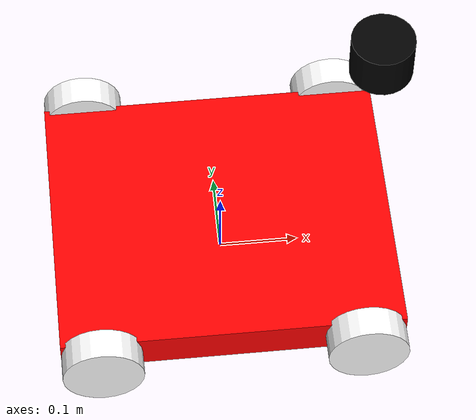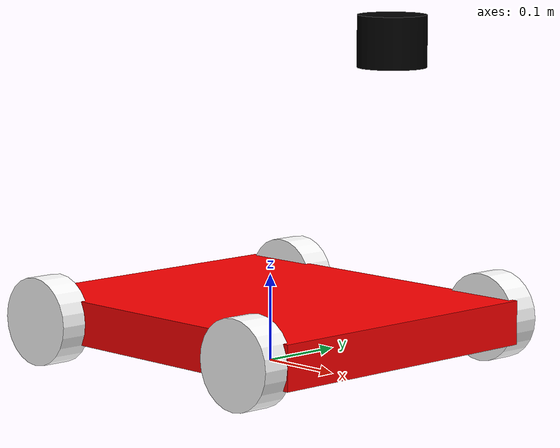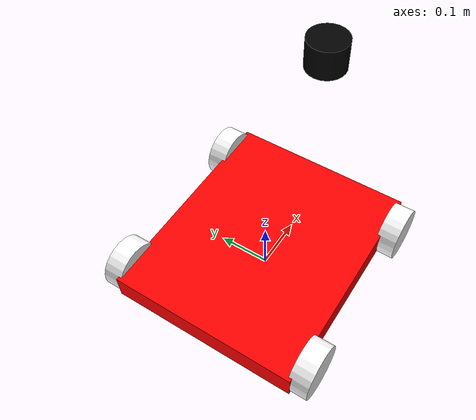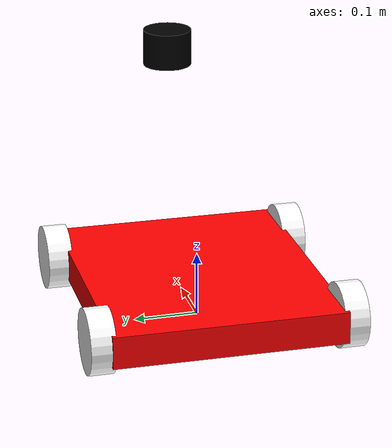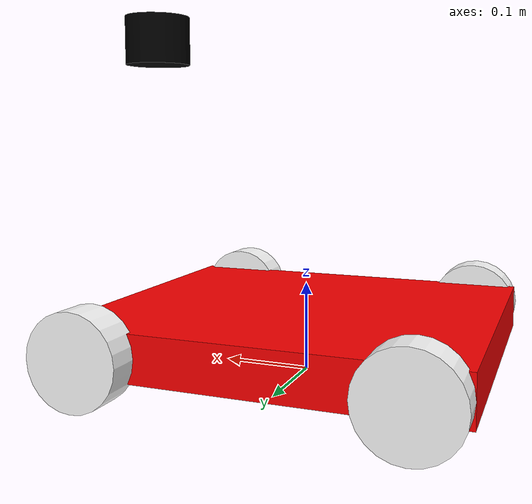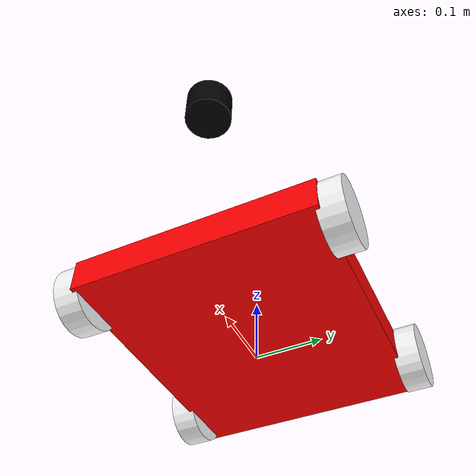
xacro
<?xml version="1.0"?>
<!-- Basic differential drive mobile base -->
<robot xmlns:xacro="http://www.ros.org/wiki/xacro" name="diffdrive_robot">
  <xacro:arg name="prefix" default="" />
  <xacro:arg name="use_mock_hardware" default="false" />

  <xacro:include filename="$(find ros2_control_demo_example_2)/urdf/robo_holly.xacro" />

  <!-- Import Rviz colors -->

  <!-- Import diffbot ros2_control description -->
  <xacro:include filename="$(find ros2_control_demo_example_2)/ros2_control/diffbot.ros2_control.xacro" />

  <xacro:diffbot_ros2_control
    name="DiffBot" prefix="$(arg prefix)" use_mock_hardware="$(arg use_mock_hardware)"/>

</robot>

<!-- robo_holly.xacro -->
<robot name="robo_holly" xmlns:xacro="http://ros.org/wiki/xacro">

  <!-- ****************** ROBOT CONSTANTS *******************************  -->
  <!-- Define the size of the robot's main chassis in meters -->
  <xacro:property name="base_width" value="0.36195"/>
  <xacro:property name="base_length" value="0.4318"/>
  <xacro:property name="base_height" value="0.0508"/>

  <!-- Define the shape of the robot's two back wheels in meters -->
  <xacro:property name="wheel_radius" value="0.0508"/>
  <xacro:property name="wheel_width" value="0.0381"/>

  <!-- x-axis points forward, y-axis points to left, z-axis points upwards -->
  <!-- Define the gap between the wheel and chassis along y-axis in meters -->
  <xacro:property name="wheel_ygap" value="0.0127"/>

  <!-- Position the wheels along the z-axis -->
  <xacro:property name="wheel_zoff" value="0.05"/>

  <!-- Position the wheels along the x-axis -->
  <xacro:property name="front_wheel_xoff" value="-0.1651"/>

  <!-- Position the caster wheel along the x-axis -->
  <xacro:property name="back_wheel_xoff" value="0.1651"/>

  <!-- Define intertial property macros  -->
  <xacro:macro name="box_inertia" params="m w h d">
    <inertial>
      <origin xyz="0 0 0" rpy="${pi/2} 0 ${pi/2}"/>
      <mass value="${m}"/>
      <inertia ixx="${(m/12) * (h*h + d*d)}" ixy="0.0" ixz="0.0" iyy="${(m/12) * (w*w + d*d)}" iyz="0.0" izz="${(m/12) * (w*w + h*h)}"/>
    </inertial>
  </xacro:macro>

  <xacro:macro name="cylinder_inertia" params="m r h">
    <inertial>
      <origin xyz="0 0 0" rpy="${pi/2} 0 0" />
      <mass value="${m}"/>
      <inertia ixx="${(m/12) * (3*r*r + h*h)}" ixy = "0" ixz = "0" iyy="${(m/12) * (3*r*r + h*h)}" iyz = "0" izz="${(m/2) * (r*r)}"/>
    </inertial>
  </xacro:macro>

  <xacro:macro name="sphere_inertia" params="m r">
    <inertial>
      <mass value="${m}"/>
      <inertia ixx="${(2/5) * m * (r*r)}" ixy="0.0" ixz="0.0" iyy="${(2/5) * m * (r*r)}" iyz="0.0" izz="${(2/5) * m * (r*r)}"/>
    </inertial>
  </xacro:macro>

  <!-- ********************** ROBOT BASE *********************************  -->
  <link name="base_link">
    <visual>
      <origin xyz="0 0 0.05" rpy="0 0 0"/>
      <geometry>
        <box size="${base_length} ${base_width} ${base_height}"/>
      </geometry>
      <material name="Red">
        <color rgba="${255/255} ${0/255} ${0/255} 1.0"/>
      </material>
    </visual>

    <collision>
      <geometry>
        <box size="${base_length} ${base_width} ${base_height}"/>
      </geometry>
    </collision>

    <xacro:box_inertia m="40.0" w="${base_width}" d="${base_length}" h="${base_height}"/>
  </link>

  <gazebo reference="base_link">
    <material>Gazebo/Red</material>
  </gazebo>

  <!-- *********************** DRIVE WHEELS ******************************  -->

  <xacro:macro name="front_wheel" params="prefix x_reflect y_reflect">
    <link name="${prefix}_link">
      <visual>
        <origin xyz="0 0 0" rpy="1.5707963267949 0 0"/>
        <geometry>
            <cylinder radius="${wheel_radius}" length="${wheel_width}"/>
        </geometry>
        <material name="White">
          <color rgba="${255/255} ${255/255} ${255/255} 1.0"/>
        </material>
      </visual>

      <collision>
        <origin xyz="0 0 0" rpy="${pi/2} 0 0"/>
        <geometry>
          <sphere radius="${wheel_radius}"/>
        </geometry>
      </collision>

      <xacro:cylinder_inertia m="110.5" r="${wheel_radius}" h="${wheel_width}"/>

    </link>

    <!-- Connect the wheels to the base_link at the appropriate location, and
         define a continuous joint to allow the wheels to freely rotate about
         an axis -->
    <joint name="${prefix}_joint" type="continuous">
      <parent link="base_link"/>
      <child link="${prefix}_link"/>
      <origin xyz="${x_reflect*front_wheel_xoff} ${y_reflect*(base_width/2+wheel_ygap)} ${wheel_zoff}" rpy="0 0 0"/>
      <axis xyz="0 1 0"/>
    </joint>
  </xacro:macro>

  <xacro:macro name="back_wheel" params="prefix x_reflect y_reflect">
    <link name="${prefix}_link">
      <visual>
        <origin xyz="0 0 0" rpy="1.5707963267949 0 0"/>
        <geometry>
            <cylinder radius="${wheel_radius}" length="${wheel_width}"/>
        </geometry>
        <material name="White">
          <color rgba="${255/255} ${255/255} ${255/255} 1.0"/>
        </material>
      </visual>

      <collision>
        <origin xyz="0 0 0" rpy="${pi/2} 0 0"/>
        <geometry>
          <sphere radius="${wheel_radius}"/>
        </geometry>
      </collision>

      <xacro:cylinder_inertia m="110.5" r="${wheel_radius}" h="${wheel_width}"/>

    </link>

    <!-- Connect the wheels to the base_link at the appropriate location, and
         define a continuous joint to allow the wheels to freely rotate about
         an axis -->
    <joint name="${prefix}_joint" type="continuous">
      <parent link="base_link"/>
      <child link="${prefix}_link"/>
      <origin xyz="${x_reflect*back_wheel_xoff} ${y_reflect*(base_width/2+wheel_ygap)} ${wheel_zoff}" rpy="0 0 0"/>
      <axis xyz="0 1 0"/>
    </joint>
  </xacro:macro>

  <xacro:front_wheel prefix="drivewhl_lf" x_reflect="-1" y_reflect="1" />
  <xacro:front_wheel prefix="drivewhl_rf" x_reflect="-1" y_reflect="-1" />

  <xacro:back_wheel prefix="drivewhl_lb" x_reflect="-1" y_reflect="1" />
  <xacro:back_wheel prefix="drivewhl_rb" x_reflect="-1" y_reflect="-1" />

  <!-- *********************** IMU SETUP *********************************  -->
  <!-- Each sensor must be attached to a link.                              -->

  <joint name="imu_joint" type="fixed">
    <parent link="base_link"/>
    <child link="imu_link"/>
    <origin xyz="-0.0254 0 0.1524" rpy="3.14159 0 3.14159"/>
  </joint>

  <link name="imu_link"/>

  <!-- *********************** LIDAR SETUP **********************************  -->
  <joint name="lidar_joint" type="fixed">
    <parent link="base_link"/>
    <child link="lidar_link"/>
    <origin xyz="0.1905 0 0.381" rpy="0 0 3.14159"/>
  </joint>

  <link name="lidar_link">

    <collision>
     <origin xyz="0.1905 0 0.381" rpy="0 0 3.14159"/>
     <geometry>
      <cylinder radius="0.0381" length="0.057"/>
     </geometry>
    </collision>

    <visual>
     <origin xyz="0 0 0" rpy="0 0 0"/>
     <geometry>
      <cylinder radius="0.0381" length="0.057"/>
     </geometry>
     <material name="Black">
          <color rgba="${0/255} ${0/255} ${0/255} 1.0"/>
     </material>
    </visual>

    <inertial>
      <mass value="0.114" />
      <origin xyz="0 0 0" rpy="0 0 0"/>
      <inertia ixx="0.001" ixy="0" ixz="0" iyy="0.001" iyz="0" izz="0.001" />
    </inertial>
  </link>

</robot>
